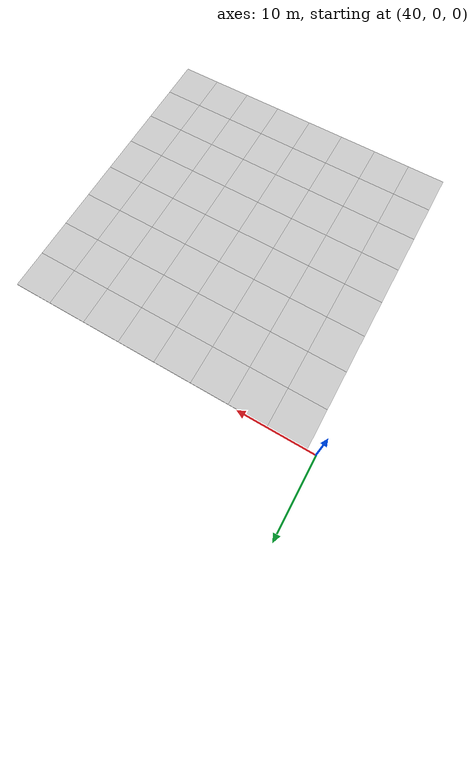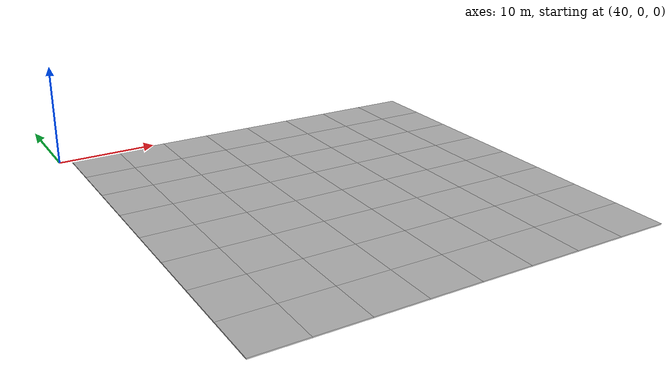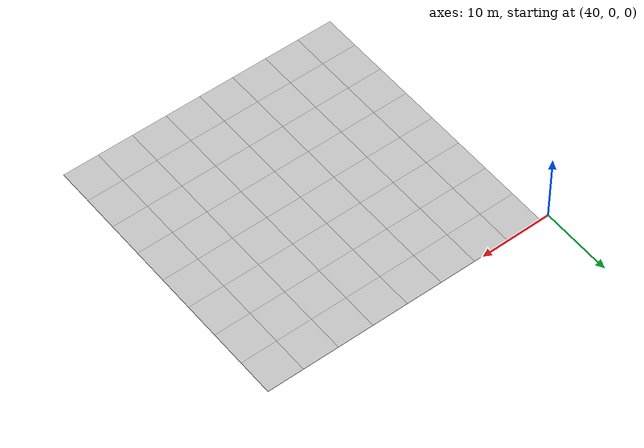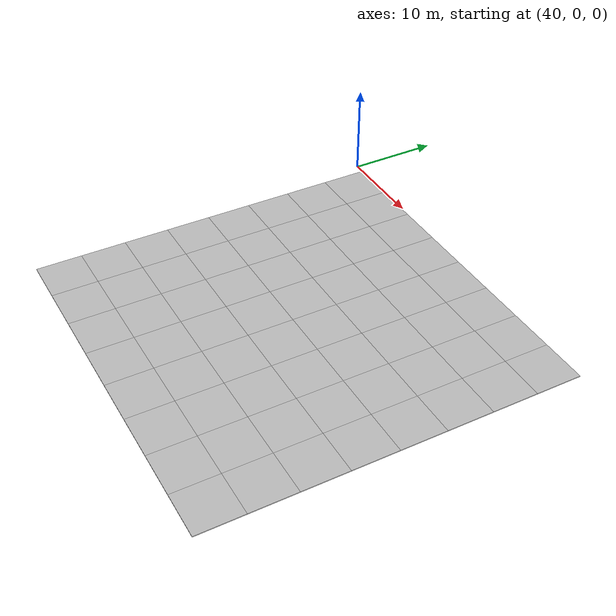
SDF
<sdf version="1.7">
 <world name="default">
  <model name="mud_plane_80x80_0">
   <model name="mud_plane_40x40">
    <model name="mud_plane_20x20">
     <model name="mud_plane">
      <static>1</static>
      <link name="link">
       <collision name="collision"><geometry><box><size>10 10 0.1</size></box></geometry></collision>
       <visual name="visual_1">
        <pose>-2.5 2.5 -0.05 0 -0 0</pose>
        <cast_shadows>0</cast_shadows>
        <geometry><box><size>5 5 0.1</size></box></geometry>
        <material>
         <script>
          <uri>model://mud_plane/materials/scripts</uri>
          <uri>model://mud_plane/materials/textures</uri>
          <name>vrc/mud</name>
         </script>
        </material>
       </visual>
       <visual name="visual_2">
        <pose>2.5 2.5 -0.05 0 -0 0</pose>
        <cast_shadows>0</cast_shadows>
        <geometry><box><size>5 5 0.1</size></box></geometry>
        <material>
         <script>
          <uri>model://mud_plane/materials/scripts</uri>
          <uri>model://mud_plane/materials/textures</uri>
          <name>vrc/mud</name>
         </script>
        </material>
       </visual>
       <visual name="visual_3">
        <pose>2.5 -2.5 -0.05 0 -0 0</pose>
        <cast_shadows>0</cast_shadows>
        <geometry><box><size>5 5 0.1</size></box></geometry>
        <material>
         <script>
          <uri>model://mud_plane/materials/scripts</uri>
          <uri>model://mud_plane/materials/textures</uri>
          <name>vrc/mud</name>
         </script>
        </material>
       </visual>
       <visual name="visual_4">
        <pose>-2.5 -2.5 -0.05 0 -0 0</pose>
        <cast_shadows>0</cast_shadows>
        <geometry><box><size>5 5 0.1</size></box></geometry>
        <material>
         <script>
          <uri>model://mud_plane/materials/scripts</uri>
          <uri>model://mud_plane/materials/textures</uri>
          <name>vrc/mud</name>
         </script>
        </material>
       </visual>
      </link>
      <pose>-4.99986 -4.99991 0 0 -0 0</pose>
     </model>
     <model name="mud_plane_0">
      <static>1</static>
      <link name="link">
       <collision name="collision"><geometry><box><size>10 10 0.1</size></box></geometry></collision>
       <visual name="visual_1">
        <pose>-2.5 2.5 -0.05 0 -0 0</pose>
        <cast_shadows>0</cast_shadows>
        <geometry><box><size>5 5 0.1</size></box></geometry>
        <material>
         <script>
          <uri>model://mud_plane/materials/scripts</uri>
          <uri>model://mud_plane/materials/textures</uri>
          <name>vrc/mud</name>
         </script>
        </material>
       </visual>
       <visual name="visual_2">
        <pose>2.5 2.5 -0.05 0 -0 0</pose>
        <cast_shadows>0</cast_shadows>
        <geometry><box><size>5 5 0.1</size></box></geometry>
        <material>
         <script>
          <uri>model://mud_plane/materials/scripts</uri>
          <uri>model://mud_plane/materials/textures</uri>
          <name>vrc/mud</name>
         </script>
        </material>
       </visual>
       <visual name="visual_3">
        <pose>2.5 -2.5 -0.05 0 -0 0</pose>
        <cast_shadows>0</cast_shadows>
        <geometry><box><size>5 5 0.1</size></box></geometry>
        <material>
         <script>
          <uri>model://mud_plane/materials/scripts</uri>
          <uri>model://mud_plane/materials/textures</uri>
          <name>vrc/mud</name>
         </script>
        </material>
       </visual>
       <visual name="visual_4">
        <pose>-2.5 -2.5 -0.05 0 -0 0</pose>
        <cast_shadows>0</cast_shadows>
        <geometry><box><size>5 5 0.1</size></box></geometry>
        <material>
         <script>
          <uri>model://mud_plane/materials/scripts</uri>
          <uri>model://mud_plane/materials/textures</uri>
          <name>vrc/mud</name>
         </script>
        </material>
       </visual>
      </link>
      <pose>-4.99946 4.99954 0 0 -0 0</pose>
     </model>
     <model name="mud_plane_1">
      <static>1</static>
      <link name="link">
       <collision name="collision"><geometry><box><size>10 10 0.1</size></box></geometry></collision>
       <visual name="visual_1">
        <pose>-2.5 2.5 -0.05 0 -0 0</pose>
        <cast_shadows>0</cast_shadows>
        <geometry><box><size>5 5 0.1</size></box></geometry>
        <material>
         <script>
          <uri>model://mud_plane/materials/scripts</uri>
          <uri>model://mud_plane/materials/textures</uri>
          <name>vrc/mud</name>
         </script>
        </material>
       </visual>
       <visual name="visual_2">
        <pose>2.5 2.5 -0.05 0 -0 0</pose>
        <cast_shadows>0</cast_shadows>
        <geometry><box><size>5 5 0.1</size></box></geometry>
        <material>
         <script>
          <uri>model://mud_plane/materials/scripts</uri>
          <uri>model://mud_plane/materials/textures</uri>
          <name>vrc/mud</name>
         </script>
        </material>
       </visual>
       <visual name="visual_3">
        <pose>2.5 -2.5 -0.05 0 -0 0</pose>
        <cast_shadows>0</cast_shadows>
        <geometry><box><size>5 5 0.1</size></box></geometry>
        <material>
         <script>
          <uri>model://mud_plane/materials/scripts</uri>
          <uri>model://mud_plane/materials/textures</uri>
          <name>vrc/mud</name>
         </script>
        </material>
       </visual>
       <visual name="visual_4">
        <pose>-2.5 -2.5 -0.05 0 -0 0</pose>
        <cast_shadows>0</cast_shadows>
        <geometry><box><size>5 5 0.1</size></box></geometry>
        <material>
         <script>
          <uri>model://mud_plane/materials/scripts</uri>
          <uri>model://mud_plane/materials/textures</uri>
          <name>vrc/mud</name>
         </script>
        </material>
       </visual>
      </link>
      <pose>4.99964 -4.99949 0 0 -0 0</pose>
     </model>
     <model name="mud_plane_2">
      <static>1</static>
      <link name="link">
       <collision name="collision"><geometry><box><size>10 10 0.1</size></box></geometry></collision>
       <visual name="visual_1">
        <pose>-2.5 2.5 -0.05 0 -0 0</pose>
        <cast_shadows>0</cast_shadows>
        <geometry><box><size>5 5 0.1</size></box></geometry>
        <material>
         <script>
          <uri>model://mud_plane/materials/scripts</uri>
          <uri>model://mud_plane/materials/textures</uri>
          <name>vrc/mud</name>
         </script>
        </material>
       </visual>
       <visual name="visual_2">
        <pose>2.5 2.5 -0.05 0 -0 0</pose>
        <cast_shadows>0</cast_shadows>
        <geometry><box><size>5 5 0.1</size></box></geometry>
        <material>
         <script>
          <uri>model://mud_plane/materials/scripts</uri>
          <uri>model://mud_plane/materials/textures</uri>
          <name>vrc/mud</name>
         </script>
        </material>
       </visual>
       <visual name="visual_3">
        <pose>2.5 -2.5 -0.05 0 -0 0</pose>
        <cast_shadows>0</cast_shadows>
        <geometry><box><size>5 5 0.1</size></box></geometry>
        <material>
         <script>
          <uri>model://mud_plane/materials/scripts</uri>
          <uri>model://mud_plane/materials/textures</uri>
          <name>vrc/mud</name>
         </script>
        </material>
       </visual>
       <visual name="visual_4">
        <pose>-2.5 -2.5 -0.05 0 -0 0</pose>
        <cast_shadows>0</cast_shadows>
        <geometry><box><size>5 5 0.1</size></box></geometry>
        <material>
         <script>
          <uri>model://mud_plane/materials/scripts</uri>
          <uri>model://mud_plane/materials/textures</uri>
          <name>vrc/mud</name>
         </script>
        </material>
       </visual>
      </link>
      <pose>4.99967 4.99986 0 0 -0 0</pose>
     </model>
     <static>0</static>
     <pose>-9.99895 9.99843 0 0 -0 0</pose>
    </model>
    <model name="mud_plane_20x20_0">
     <model name="mud_plane">
      <static>1</static>
      <link name="link">
       <collision name="collision"><geometry><box><size>10 10 0.1</size></box></geometry></collision>
       <visual name="visual_1">
        <pose>-2.5 2.5 -0.05 0 -0 0</pose>
        <cast_shadows>0</cast_shadows>
        <geometry><box><size>5 5 0.1</size></box></geometry>
        <material>
         <script>
          <uri>model://mud_plane/materials/scripts</uri>
          <uri>model://mud_plane/materials/textures</uri>
          <name>vrc/mud</name>
         </script>
        </material>
       </visual>
       <visual name="visual_2">
        <pose>2.5 2.5 -0.05 0 -0 0</pose>
        <cast_shadows>0</cast_shadows>
        <geometry><box><size>5 5 0.1</size></box></geometry>
        <material>
         <script>
          <uri>model://mud_plane/materials/scripts</uri>
          <uri>model://mud_plane/materials/textures</uri>
          <name>vrc/mud</name>
         </script>
        </material>
       </visual>
       <visual name="visual_3">
        <pose>2.5 -2.5 -0.05 0 -0 0</pose>
        <cast_shadows>0</cast_shadows>
        <geometry><box><size>5 5 0.1</size></box></geometry>
        <material>
         <script>
          <uri>model://mud_plane/materials/scripts</uri>
          <uri>model://mud_plane/materials/textures</uri>
          <name>vrc/mud</name>
         </script>
        </material>
       </visual>
       <visual name="visual_4">
        <pose>-2.5 -2.5 -0.05 0 -0 0</pose>
        <cast_shadows>0</cast_shadows>
        <geometry><box><size>5 5 0.1</size></box></geometry>
        <material>
         <script>
          <uri>model://mud_plane/materials/scripts</uri>
          <uri>model://mud_plane/materials/textures</uri>
          <name>vrc/mud</name>
         </script>
        </material>
       </visual>
      </link>
      <pose>-4.99986 -4.99991 0 0 -0 0</pose>
     </model>
     <model name="mud_plane_0">
      <static>1</static>
      <link name="link">
       <collision name="collision"><geometry><box><size>10 10 0.1</size></box></geometry></collision>
       <visual name="visual_1">
        <pose>-2.5 2.5 -0.05 0 -0 0</pose>
        <cast_shadows>0</cast_shadows>
        <geometry><box><size>5 5 0.1</size></box></geometry>
        <material>
         <script>
          <uri>model://mud_plane/materials/scripts</uri>
          <uri>model://mud_plane/materials/textures</uri>
          <name>vrc/mud</name>
         </script>
        </material>
       </visual>
       <visual name="visual_2">
        <pose>2.5 2.5 -0.05 0 -0 0</pose>
        <cast_shadows>0</cast_shadows>
        <geometry><box><size>5 5 0.1</size></box></geometry>
        <material>
         <script>
          <uri>model://mud_plane/materials/scripts</uri>
          <uri>model://mud_plane/materials/textures</uri>
          <name>vrc/mud</name>
         </script>
        </material>
       </visual>
       <visual name="visual_3">
        <pose>2.5 -2.5 -0.05 0 -0 0</pose>
        <cast_shadows>0</cast_shadows>
        <geometry><box><size>5 5 0.1</size></box></geometry>
        <material>
         <script>
          <uri>model://mud_plane/materials/scripts</uri>
          <uri>model://mud_plane/materials/textures</uri>
          <name>vrc/mud</name>
         </script>
        </material>
       </visual>
       <visual name="visual_4">
        <pose>-2.5 -2.5 -0.05 0 -0 0</pose>
        <cast_shadows>0</cast_shadows>
        <geometry><box><size>5 5 0.1</size></box></geometry>
        <material>
         <script>
          <uri>model://mud_plane/materials/scripts</uri>
          <uri>model://mud_plane/materials/textures</uri>
          <name>vrc/mud</name>
         </script>
        </material>
       </visual>
      </link>
      <pose>-4.99946 4.99954 0 0 -0 0</pose>
     </model>
     <model name="mud_plane_1">
      <static>1</static>
      <link name="link">
       <collision name="collision"><geometry><box><size>10 10 0.1</size></box></geometry></collision>
       <visual name="visual_1">
        <pose>-2.5 2.5 -0.05 0 -0 0</pose>
        <cast_shadows>0</cast_shadows>
        <geometry><box><size>5 5 0.1</size></box></geometry>
        <material>
         <script>
          <uri>model://mud_plane/materials/scripts</uri>
          <uri>model://mud_plane/materials/textures</uri>
          <name>vrc/mud</name>
         </script>
        </material>
       </visual>
       <visual name="visual_2">
        <pose>2.5 2.5 -0.05 0 -0 0</pose>
        <cast_shadows>0</cast_shadows>
        <geometry><box><size>5 5 0.1</size></box></geometry>
        <material>
         <script>
          <uri>model://mud_plane/materials/scripts</uri>
          <uri>model://mud_plane/materials/textures</uri>
          <name>vrc/mud</name>
         </script>
        </material>
       </visual>
       <visual name="visual_3">
        <pose>2.5 -2.5 -0.05 0 -0 0</pose>
        <cast_shadows>0</cast_shadows>
        <geometry><box><size>5 5 0.1</size></box></geometry>
        <material>
         <script>
          <uri>model://mud_plane/materials/scripts</uri>
          <uri>model://mud_plane/materials/textures</uri>
          <name>vrc/mud</name>
         </script>
        </material>
       </visual>
       <visual name="visual_4">
        <pose>-2.5 -2.5 -0.05 0 -0 0</pose>
        <cast_shadows>0</cast_shadows>
        <geometry><box><size>5 5 0.1</size></box></geometry>
        <material>
         <script>
          <uri>model://mud_plane/materials/scripts</uri>
          <uri>model://mud_plane/materials/textures</uri>
          <name>vrc/mud</name>
         </script>
        </material>
       </visual>
      </link>
      <pose>4.99964 -4.99949 0 0 -0 0</pose>
     </model>
     <model name="mud_plane_2">
      <static>1</static>
      <link name="link">
       <collision name="collision"><geometry><box><size>10 10 0.1</size></box></geometry></collision>
       <visual name="visual_1">
        <pose>-2.5 2.5 -0.05 0 -0 0</pose>
        <cast_shadows>0</cast_shadows>
        <geometry><box><size>5 5 0.1</size></box></geometry>
        <material>
         <script>
          <uri>model://mud_plane/materials/scripts</uri>
          <uri>model://mud_plane/materials/textures</uri>
          <name>vrc/mud</name>
         </script>
        </material>
       </visual>
       <visual name="visual_2">
        <pose>2.5 2.5 -0.05 0 -0 0</pose>
        <cast_shadows>0</cast_shadows>
        <geometry><box><size>5 5 0.1</size></box></geometry>
        <material>
         <script>
          <uri>model://mud_plane/materials/scripts</uri>
          <uri>model://mud_plane/materials/textures</uri>
          <name>vrc/mud</name>
         </script>
        </material>
       </visual>
       <visual name="visual_3">
        <pose>2.5 -2.5 -0.05 0 -0 0</pose>
        <cast_shadows>0</cast_shadows>
        <geometry><box><size>5 5 0.1</size></box></geometry>
        <material>
         <script>
          <uri>model://mud_plane/materials/scripts</uri>
          <uri>model://mud_plane/materials/textures</uri>
          <name>vrc/mud</name>
         </script>
        </material>
       </visual>
       <visual name="visual_4">
        <pose>-2.5 -2.5 -0.05 0 -0 0</pose>
        <cast_shadows>0</cast_shadows>
        <geometry><box><size>5 5 0.1</size></box></geometry>
        <material>
         <script>
          <uri>model://mud_plane/materials/scripts</uri>
          <uri>model://mud_plane/materials/textures</uri>
          <name>vrc/mud</name>
         </script>
        </material>
       </visual>
      </link>
      <pose>4.99967 4.99986 0 0 -0 0</pose>
     </model>
     <static>0</static>
     <pose>9.99933 9.9997 0 0 -0 0</pose>
    </model>
    <model name="mud_plane_20x20_1">
     <model name="mud_plane">
      <static>1</static>
      <link name="link">
       <collision name="collision"><geometry><box><size>10 10 0.1</size></box></geometry></collision>
       <visual name="visual_1">
        <pose>-2.5 2.5 -0.05 0 -0 0</pose>
        <cast_shadows>0</cast_shadows>
        <geometry><box><size>5 5 0.1</size></box></geometry>
        <material>
         <script>
          <uri>model://mud_plane/materials/scripts</uri>
          <uri>model://mud_plane/materials/textures</uri>
          <name>vrc/mud</name>
         </script>
        </material>
       </visual>
       <visual name="visual_2">
        <pose>2.5 2.5 -0.05 0 -0 0</pose>
        <cast_shadows>0</cast_shadows>
        <geometry><box><size>5 5 0.1</size></box></geometry>
        <material>
         <script>
          <uri>model://mud_plane/materials/scripts</uri>
          <uri>model://mud_plane/materials/textures</uri>
          <name>vrc/mud</name>
         </script>
        </material>
       </visual>
       <visual name="visual_3">
        <pose>2.5 -2.5 -0.05 0 -0 0</pose>
        <cast_shadows>0</cast_shadows>
        <geometry><box><size>5 5 0.1</size></box></geometry>
        <material>
         <script>
          <uri>model://mud_plane/materials/scripts</uri>
          <uri>model://mud_plane/materials/textures</uri>
          <name>vrc/mud</name>
         </script>
        </material>
       </visual>
       <visual name="visual_4">
        <pose>-2.5 -2.5 -0.05 0 -0 0</pose>
        <cast_shadows>0</cast_shadows>
        <geometry><box><size>5 5 0.1</size></box></geometry>
        <material>
         <script>
          <uri>model://mud_plane/materials/scripts</uri>
          <uri>model://mud_plane/materials/textures</uri>
          <name>vrc/mud</name>
         </script>
        </material>
       </visual>
      </link>
      <pose>-4.99986 -4.99991 0 0 -0 0</pose>
     </model>
     <model name="mud_plane_0">
      <static>1</static>
      <link name="link">
       <collision name="collision"><geometry><box><size>10 10 0.1</size></box></geometry></collision>
       <visual name="visual_1">
        <pose>-2.5 2.5 -0.05 0 -0 0</pose>
        <cast_shadows>0</cast_shadows>
        <geometry><box><size>5 5 0.1</size></box></geometry>
        <material>
         <script>
          <uri>model://mud_plane/materials/scripts</uri>
          <uri>model://mud_plane/materials/textures</uri>
          <name>vrc/mud</name>
         </script>
        </material>
       </visual>
       <visual name="visual_2">
        <pose>2.5 2.5 -0.05 0 -0 0</pose>
        <cast_shadows>0</cast_shadows>
        <geometry><box><size>5 5 0.1</size></box></geometry>
        <material>
         <script>
          <uri>model://mud_plane/materials/scripts</uri>
          <uri>model://mud_plane/materials/textures</uri>
          <name>vrc/mud</name>
         </script>
        </material>
       </visual>
       <visual name="visual_3">
        <pose>2.5 -2.5 -0.05 0 -0 0</pose>
        <cast_shadows>0</cast_shadows>
        <geometry><box><size>5 5 0.1</size></box></geometry>
        <material>
         <script>
          <uri>model://mud_plane/materials/scripts</uri>
          <uri>model://mud_plane/materials/textures</uri>
          <name>vrc/mud</name>
         </script>
        </material>
       </visual>
       <visual name="visual_4">
        <pose>-2.5 -2.5 -0.05 0 -0 0</pose>
        <cast_shadows>0</cast_shadows>
        <geometry><box><size>5 5 0.1</size></box></geometry>
        <material>
         <script>
          <uri>model://mud_plane/materials/scripts</uri>
          <uri>model://mud_plane/materials/textures</uri>
          <name>vrc/mud</name>
         </script>
        </material>
       </visual>
      </link>
      <pose>-4.99946 4.99954 0 0 -0 0</pose>
     </model>
     <model name="mud_plane_1">
      <static>1</static>
      <link name="link">
       <collision name="collision"><geometry><box><size>10 10 0.1</size></box></geometry></collision>
       <visual name="visual_1">
        <pose>-2.5 2.5 -0.05 0 -0 0</pose>
        <cast_shadows>0</cast_shadows>
        <geometry><box><size>5 5 0.1</size></box></geometry>
        <material>
         <script>
          <uri>model://mud_plane/materials/scripts</uri>
          <uri>model://mud_plane/materials/textures</uri>
          <name>vrc/mud</name>
         </script>
        </material>
       </visual>
       <visual name="visual_2">
        <pose>2.5 2.5 -0.05 0 -0 0</pose>
        <cast_shadows>0</cast_shadows>
        <geometry><box><size>5 5 0.1</size></box></geometry>
        <material>
         <script>
          <uri>model://mud_plane/materials/scripts</uri>
          <uri>model://mud_plane/materials/textures</uri>
          <name>vrc/mud</name>
         </script>
        </material>
       </visual>
       <visual name="visual_3">
        <pose>2.5 -2.5 -0.05 0 -0 0</pose>
        <cast_shadows>0</cast_shadows>
        <geometry><box><size>5 5 0.1</size></box></geometry>
        <material>
         <script>
          <uri>model://mud_plane/materials/scripts</uri>
          <uri>model://mud_plane/materials/textures</uri>
          <name>vrc/mud</name>
         </script>
        </material>
       </visual>
       <visual name="visual_4">
        <pose>-2.5 -2.5 -0.05 0 -0 0</pose>
        <cast_shadows>0</cast_shadows>
        <geometry><box><size>5 5 0.1</size></box></geometry>
        <material>
         <script>
          <uri>model://mud_plane/materials/scripts</uri>
          <uri>model://mud_plane/materials/textures</uri>
          <name>vrc/mud</name>
         </script>
        </material>
       </visual>
      </link>
      <pose>4.99964 -4.99949 0 0 -0 0</pose>
     </model>
     <model name="mud_plane_2">
      <static>1</static>
      <link name="link">
       <collision name="collision"><geometry><box><size>10 10 0.1</size></box></geometry></collision>
       <visual name="visual_1">
        <pose>-2.5 2.5 -0.05 0 -0 0</pose>
        <cast_shadows>0</cast_shadows>
        <geometry><box><size>5 5 0.1</size></box></geometry>
        <material>
         <script>
          <uri>model://mud_plane/materials/scripts</uri>
          <uri>model://mud_plane/materials/textures</uri>
          <name>vrc/mud</name>
         </script>
        </material>
       </visual>
       <visual name="visual_2">
        <pose>2.5 2.5 -0.05 0 -0 0</pose>
        <cast_shadows>0</cast_shadows>
        <geometry><box><size>5 5 0.1</size></box></geometry>
        <material>
         <script>
          <uri>model://mud_plane/materials/scripts</uri>
          <uri>model://mud_plane/materials/textures</uri>
          <name>vrc/mud</name>
         </script>
        </material>
       </visual>
       <visual name="visual_3">
        <pose>2.5 -2.5 -0.05 0 -0 0</pose>
        <cast_shadows>0</cast_shadows>
        <geometry><box><size>5 5 0.1</size></box></geometry>
        <material>
         <script>
          <uri>model://mud_plane/materials/scripts</uri>
          <uri>model://mud_plane/materials/textures</uri>
          <name>vrc/mud</name>
         </script>
        </material>
       </visual>
       <visual name="visual_4">
        <pose>-2.5 -2.5 -0.05 0 -0 0</pose>
        <cast_shadows>0</cast_shadows>
        <geometry><box><size>5 5 0.1</size></box></geometry>
        <material>
         <script>
          <uri>model://mud_plane/materials/scripts</uri>
          <uri>model://mud_plane/materials/textures</uri>
          <name>vrc/mud</name>
         </script>
        </material>
       </visual>
      </link>
      <pose>4.99967 4.99986 0 0 -0 0</pose>
     </model>
     <static>0</static>
     <pose>9.9993 -9.99877 0 0 -0 0</pose>
    </model>
    <model name="mud_plane_20x20_2">
     <model name="mud_plane">
      <static>1</static>
      <link name="link">
       <collision name="collision"><geometry><box><size>10 10 0.1</size></box></geometry></collision>
       <visual name="visual_1">
        <pose>-2.5 2.5 -0.05 0 -0 0</pose>
        <cast_shadows>0</cast_shadows>
        <geometry><box><size>5 5 0.1</size></box></geometry>
        <material>
         <script>
          <uri>model://mud_plane/materials/scripts</uri>
          <uri>model://mud_plane/materials/textures</uri>
          <name>vrc/mud</name>
         </script>
        </material>
       </visual>
       <visual name="visual_2">
        <pose>2.5 2.5 -0.05 0 -0 0</pose>
        <cast_shadows>0</cast_shadows>
        <geometry><box><size>5 5 0.1</size></box></geometry>
        <material>
         <script>
          <uri>model://mud_plane/materials/scripts</uri>
          <uri>model://mud_plane/materials/textures</uri>
          <name>vrc/mud</name>
         </script>
        </material>
       </visual>
       <visual name="visual_3">
        <pose>2.5 -2.5 -0.05 0 -0 0</pose>
        <cast_shadows>0</cast_shadows>
        <geometry><box><size>5 5 0.1</size></box></geometry>
        <material>
         <script>
          <uri>model://mud_plane/materials/scripts</uri>
          <uri>model://mud_plane/materials/textures</uri>
          <name>vrc/mud</name>
         </script>
        </material>
       </visual>
       <visual name="visual_4">
        <pose>-2.5 -2.5 -0.05 0 -0 0</pose>
        <cast_shadows>0</cast_shadows>
        <geometry><box><size>5 5 0.1</size></box></geometry>
        <material>
         <script>
          <uri>model://mud_plane/materials/scripts</uri>
          <uri>model://mud_plane/materials/textures</uri>
          <name>vrc/mud</name>
         </script>
        </material>
       </visual>
      </link>
      <pose>-4.99986 -4.99991 0 0 -0 0</pose>
     </model>
     <model name="mud_plane_0">
      <static>1</static>
      <link name="link">
       <collision name="collision"><geometry><box><size>10 10 0.1</size></box></geometry></collision>
       <visual name="visual_1">
        <pose>-2.5 2.5 -0.05 0 -0 0</pose>
        <cast_shadows>0</cast_shadows>
        <geometry><box><size>5 5 0.1</size></box></geometry>
        <material>
         <script>
          <uri>model://mud_plane/materials/scripts</uri>
          <uri>model://mud_plane/materials/textures</uri>
          <name>vrc/mud</name>
         </script>
        </material>
       </visual>
       <visual name="visual_2">
        <pose>2.5 2.5 -0.05 0 -0 0</pose>
        <cast_shadows>0</cast_shadows>
        <geometry><box><size>5 5 0.1</size></box></geometry>
        <material>
         <script>
          <uri>model://mud_plane/materials/scripts</uri>
          <uri>model://mud_plane/materials/textures</uri>
          <name>vrc/mud</name>
         </script>
        </material>
       </visual>
       <visual name="visual_3">
        <pose>2.5 -2.5 -0.05 0 -0 0</pose>
        <cast_shadows>0</cast_shadows>
        <geometry><box><size>5 5 0.1</size></box></geometry>
        <material>
         <script>
          <uri>model://mud_plane/materials/scripts</uri>
          <uri>model://mud_plane/materials/textures</uri>
          <name>vrc/mud</name>
         </script>
        </material>
       </visual>
       <visual name="visual_4">
        <pose>-2.5 -2.5 -0.05 0 -0 0</pose>
        <cast_shadows>0</cast_shadows>
        <geometry><box><size>5 5 0.1</size></box></geometry>
        <material>
         <script>
          <uri>model://mud_plane/materials/scripts</uri>
          <uri>model://mud_plane/materials/textures</uri>
          <name>vrc/mud</name>
         </script>
        </material>
       </visual>
      </link>
      <pose>-4.99946 4.99954 0 0 -0 0</pose>
     </model>
     <model name="mud_plane_1">
      <static>1</static>
      <link name="link">
       <collision name="collision"><geometry><box><size>10 10 0.1</size></box></geometry></collision>
       <visual name="visual_1">
        <pose>-2.5 2.5 -0.05 0 -0 0</pose>
        <cast_shadows>0</cast_shadows>
        <geometry><box><size>5 5 0.1</size></box></geometry>
        <material>
         <script>
          <uri>model://mud_plane/materials/scripts</uri>
          <uri>model://mud_plane/materials/textures</uri>
          <name>vrc/mud</name>
         </script>
        </material>
       </visual>
       <visual name="visual_2">
        <pose>2.5 2.5 -0.05 0 -0 0</pose>
        <cast_shadows>0</cast_shadows>
        <geometry><box><size>5 5 0.1</size></box></geometry>
        <material>
         <script>
          <uri>model://mud_plane/materials/scripts</uri>
          <uri>model://mud_plane/materials/textures</uri>
          <name>vrc/mud</name>
         </script>
        </material>
       </visual>
       <visual name="visual_3">
        <pose>2.5 -2.5 -0.05 0 -0 0</pose>
        <cast_shadows>0</cast_shadows>
        <geometry><box><size>5 5 0.1</size></box></geometry>
        <material>
         <script>
          <uri>model://mud_plane/materials/scripts</uri>
          <uri>model://mud_plane/materials/textures</uri>
          <name>vrc/mud</name>
         </script>
        </material>
       </visual>
       <visual name="visual_4">
        <pose>-2.5 -2.5 -0.05 0 -0 0</pose>
        <cast_shadows>0</cast_shadows>
        <geometry><box><size>5 5 0.1</size></box></geometry>
        <material>
         <script>
          <uri>model://mud_plane/materials/scripts</uri>
          <uri>model://mud_plane/materials/textures</uri>
          <name>vrc/mud</name>
         </script>
        </material>
       </visual>
      </link>
      <pose>4.99964 -4.99949 0 0 -0 0</pose>
     </model>
     <model name="mud_plane_2">
      <static>1</static>
      <link name="link">
       <collision name="collision"><geometry><box><size>10 10 0.1</size></box></geometry></collision>
       <visual name="visual_1">
        <pose>-2.5 2.5 -0.05 0 -0 0</pose>
        <cast_shadows>0</cast_shadows>
        <geometry><box><size>5 5 0.1</size></box></geometry>
        <material>
         <script>
          <uri>model://mud_plane/materials/scripts</uri>
          <uri>model://mud_plane/materials/textures</uri>
          <name>vrc/mud</name>
         </script>
        </material>
       </visual>
       <visual name="visual_2">
        <pose>2.5 2.5 -0.05 0 -0 0</pose>
        <cast_shadows>0</cast_shadows>
        <geometry><box><size>5 5 0.1</size></box></geometry>
        <material>
         <script>
          <uri>model://mud_plane/materials/scripts</uri>
          <uri>model://mud_plane/materials/textures</uri>
          <name>vrc/mud</name>
         </script>
        </material>
       </visual>
       <visual name="visual_3">
        <pose>2.5 -2.5 -0.05 0 -0 0</pose>
        <cast_shadows>0</cast_shadows>
        <geometry><box><size>5 5 0.1</size></box></geometry>
        <material>
         <script>
          <uri>model://mud_plane/materials/scripts</uri>
          <uri>model://mud_plane/materials/textures</uri>
          <name>vrc/mud</name>
         </script>
        </material>
       </visual>
       <visual name="visual_4">
        <pose>-2.5 -2.5 -0.05 0 -0 0</pose>
        <cast_shadows>0</cast_shadows>
        <geometry><box><size>5 5 0.1</size></box></geometry>
        <material>
         <script>
          <uri>model://mud_plane/materials/scripts</uri>
          <uri>model://mud_plane/materials/textures</uri>
          <name>vrc/mud</name>
         </script>
        </material>
       </visual>
      </link>
      <pose>4.99967 4.99986 0 0 -0 0</pose>
     </model>
     <static>0</static>
     <pose>-9.99969 -9.99935 0 0 -0 0</pose>
    </model>
    <static>0</static>
    <pose>19.9986 19.9995 0 0 -0 0</pose>
   </model>
   <static>0</static>
   <pose>41.1505 -40.0966 0 0 -0 0</pose>
  </model>
 </world>
</sdf>
